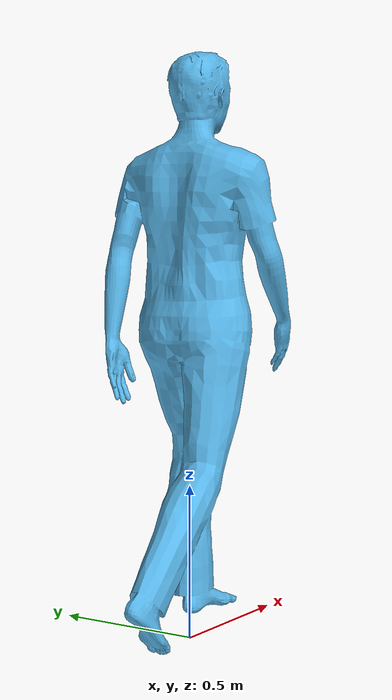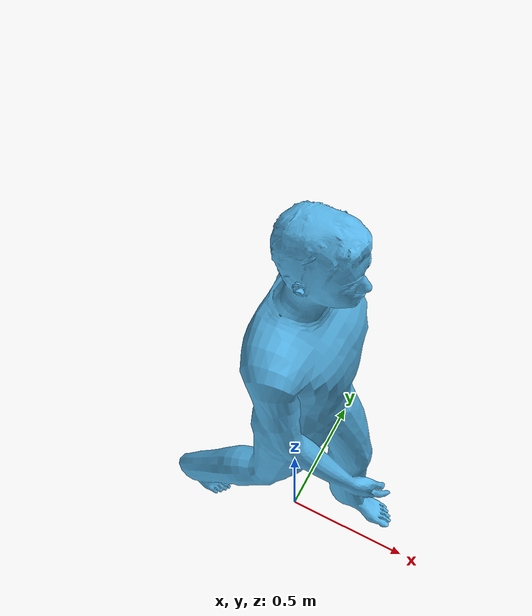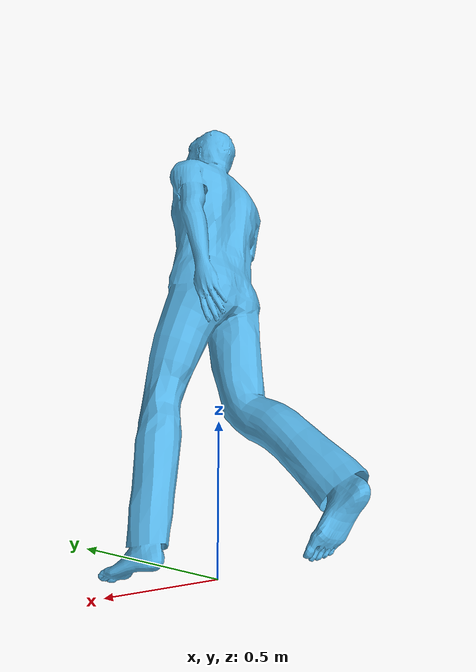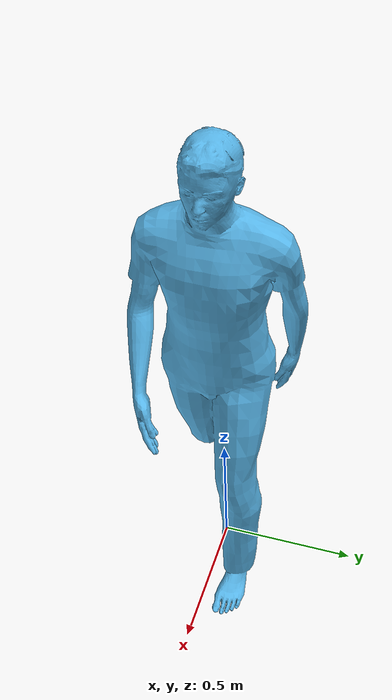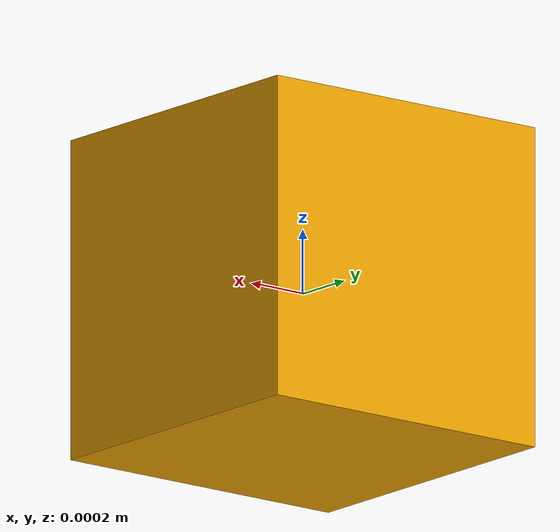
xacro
<robot name="test_model">
      <!-- root link, on the ground just below the model origin -->
      <link name="base_man_4">
        <visual>
          <origin xyz="0 0 0" rpy="0 0 0" />
          <geometry>
            <box size="0.001 0.001 0.001" />
          </geometry>
        </visual>
      </link>

      <joint name="base_link_joint" type="fixed">
        <origin xyz="0 0 0" rpy="0 0 0" />
        <parent link="base_man_4"/>
        <child link="base_link" />
      </joint>

      <!-- the model -->
      <link name="base_link">
        <inertial>
          <mass value="50" />
          <origin xyz="0 0 0" rpy="0 0 0"/>
          <inertia ixx="50.0" ixy="0.0" ixz="0.0"
            iyy="50.0" iyz="0.0"
            izz="50.0" />
        </inertial>
        <visual>
          <origin xyz="0 0 0" rpy="0 0 1.571"/>
          <geometry>
            <mesh filename="model://person_walking/meshes/walking.dae"/>
          </geometry>
        </visual>
        <collision>
          <origin xyz="0 0 0" rpy="0 0 1.571"/>
          <geometry>
            <mesh filename="model://person_walking/meshes/walking.dae"/>
          </geometry>
        </collision>
      </link>

      <gazebo>
        <plugin name="object_controller" filename="libgazebo_ros_planar_move.so">
          <commandTopic>cmd_vel/man_4</commandTopic>
          <odometryTopic>odom/man_4</odometryTopic>
          <odometryFrame>odom/man_4</odometryFrame>
          <odometryRate>20.0</odometryRate>
          <robotBaseFrame>base_man_4</robotBaseFrame>
        </plugin>
      </gazebo>

    </robot>
